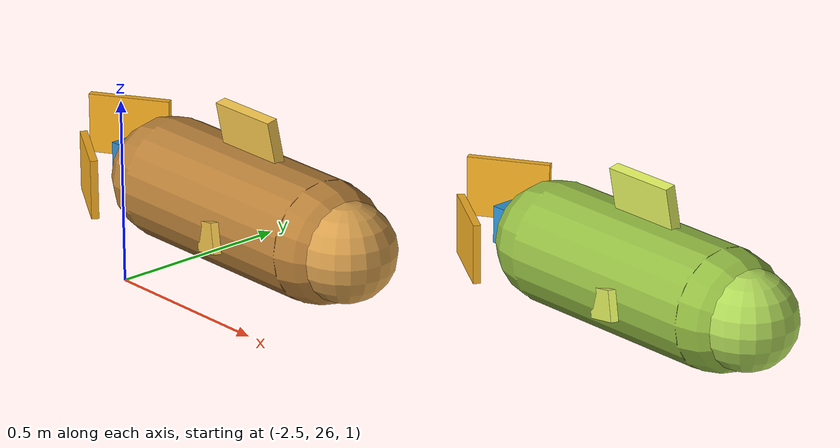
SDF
<sdf version="1.9">
 <world name="ocean_world">
  <model name="fish9">
   <static>false</static>
   <pose>-2.0 26.0 1.35 0 0 0</pose>
   <link name="body9">
    <gravity>false</gravity>
    <inertial><mass>5</mass></inertial>
    <collision name="body_collision">
     <pose>0 0 0 0 1.5708 0</pose>
     <geometry><capsule><radius>0.16</radius><length>0.58</length></capsule></geometry>
    </collision>
    <visual name="body_visual">
     <pose>0 0 0 0 1.5708 0</pose>
     <geometry><capsule><radius>0.16</radius><length>0.58</length></capsule></geometry>
     <material><ambient>0.72 0.50 0.22 1</ambient><diffuse>0.72 0.50 0.22 1</diffuse></material>
    </visual>
    <visual name="head_visual">
     <pose>0.38 0 0 0 0 0</pose>
     <geometry><sphere><radius>0.13</radius></sphere></geometry>
     <material><ambient>0.84 0.62 0.30 1</ambient><diffuse>0.84 0.62 0.30 1</diffuse></material>
    </visual>
    <visual name="eye_left">
     <pose>0.44 0.06 0.04 0 0 0</pose>
     <geometry><sphere><radius>0.02</radius></sphere></geometry>
     <material><ambient>0 0 0 1</ambient><diffuse>0 0 0 1</diffuse></material>
    </visual>
    <visual name="eye_right">
     <pose>0.44 -0.06 0.04 0 0 0</pose>
     <geometry><sphere><radius>0.02</radius></sphere></geometry>
     <material><ambient>0 0 0 1</ambient><diffuse>0 0 0 1</diffuse></material>
    </visual>
    <visual name="dorsal_fin">
     <pose>0.02 0 0.20 0.2 0 0</pose>
     <geometry><box><size>0.20 0.03 0.15</size></box></geometry>
     <material><ambient>0.96 0.78 0.30 1</ambient><diffuse>0.96 0.78 0.30 1</diffuse></material>
    </visual>
    <visual name="left_fin">
     <pose>0.04 0.16 -0.02 0 0.3 0.4</pose>
     <geometry><box><size>0.14 0.02 0.08</size></box></geometry>
     <material><ambient>0.96 0.78 0.30 1</ambient><diffuse>0.96 0.78 0.30 1</diffuse></material>
    </visual>
    <visual name="right_fin">
     <pose>0.04 -0.16 -0.02 0 -0.3 -0.4</pose>
     <geometry><box><size>0.14 0.02 0.08</size></box></geometry>
     <material><ambient>0.96 0.78 0.30 1</ambient><diffuse>0.96 0.78 0.30 1</diffuse></material>
    </visual>
   </link>
   <link name="tail9">
    <gravity>false</gravity>
    <inertial><mass>1</mass></inertial>
    <pose>-0.43 0 0 0 0 0</pose>
    <collision name="tail_collision"><geometry><box><size>0.10 0.08 0.12</size></box></geometry></collision>
    <visual name="tail_stem">
     <geometry><box><size>0.12 0.08 0.10</size></box></geometry>
     <material><ambient>0.18 0.53 0.78 1</ambient><diffuse>0.18 0.53 0.78 1</diffuse></material>
    </visual>
    <visual name="tail_top">
     <pose>-0.12 0.07 0.05 0 0 0.55</pose>
     <geometry><box><size>0.22 0.02 0.16</size></box></geometry>
     <material><ambient>0.95 0.67 0.13 1</ambient><diffuse>0.95 0.67 0.13 1</diffuse></material>
    </visual>
    <visual name="tail_bottom">
     <pose>-0.12 -0.07 -0.05 0 0 -0.55</pose>
     <geometry><box><size>0.22 0.02 0.16</size></box></geometry>
     <material><ambient>0.95 0.67 0.13 1</ambient><diffuse>0.95 0.67 0.13 1</diffuse></material>
    </visual>
   </link>
   <joint name="tail_joint9" type="revolute">
    <parent>body9</parent>
    <child>tail9</child>
    <axis>
     <xyz>0 0 1</xyz>
     <limit><lower>-0.8</lower><upper>0.8</upper><effort>5</effort><velocity>5</velocity></limit>
    </axis>
   </joint>
   <plugin filename="/home/kousik/fish_ai_plugin/build/libFishAI.so" name="FishAI"/>
  </model>
  <model name="fish10">
   <static>false</static>
   <pose>-1.2 26.6 1.25 0 0 0</pose>
   <link name="body10">
    <gravity>false</gravity>
    <inertial><mass>5</mass></inertial>
    <collision name="body_collision">
     <pose>0 0 0 0 1.5708 0</pose>
     <geometry><capsule><radius>0.16</radius><length>0.58</length></capsule></geometry>
    </collision>
    <visual name="body_visual">
     <pose>0 0 0 0 1.5708 0</pose>
     <geometry><capsule><radius>0.16</radius><length>0.58</length></capsule></geometry>
     <material><ambient>0.58 0.74 0.26 1</ambient><diffuse>0.58 0.74 0.26 1</diffuse></material>
    </visual>
    <visual name="head_visual">
     <pose>0.38 0 0 0 0 0</pose>
     <geometry><sphere><radius>0.13</radius></sphere></geometry>
     <material><ambient>0.68 0.84 0.34 1</ambient><diffuse>0.68 0.84 0.34 1</diffuse></material>
    </visual>
    <visual name="eye_left">
     <pose>0.44 0.06 0.04 0 0 0</pose>
     <geometry><sphere><radius>0.02</radius></sphere></geometry>
     <material><ambient>0 0 0 1</ambient><diffuse>0 0 0 1</diffuse></material>
    </visual>
    <visual name="eye_right">
     <pose>0.44 -0.06 0.04 0 0 0</pose>
     <geometry><sphere><radius>0.02</radius></sphere></geometry>
     <material><ambient>0 0 0 1</ambient><diffuse>0 0 0 1</diffuse></material>
    </visual>
    <visual name="dorsal_fin">
     <pose>0.02 0 0.20 0.2 0 0</pose>
     <geometry><box><size>0.20 0.03 0.15</size></box></geometry>
     <material><ambient>0.90 0.96 0.38 1</ambient><diffuse>0.90 0.96 0.38 1</diffuse></material>
    </visual>
    <visual name="left_fin">
     <pose>0.04 0.16 -0.02 0 0.3 0.4</pose>
     <geometry><box><size>0.14 0.02 0.08</size></box></geometry>
     <material><ambient>0.90 0.96 0.38 1</ambient><diffuse>0.90 0.96 0.38 1</diffuse></material>
    </visual>
    <visual name="right_fin">
     <pose>0.04 -0.16 -0.02 0 -0.3 -0.4</pose>
     <geometry><box><size>0.14 0.02 0.08</size></box></geometry>
     <material><ambient>0.90 0.96 0.38 1</ambient><diffuse>0.90 0.96 0.38 1</diffuse></material>
    </visual>
   </link>
   <link name="tail10">
    <gravity>false</gravity>
    <inertial><mass>1</mass></inertial>
    <pose>-0.43 0 0 0 0 0</pose>
    <collision name="tail_collision"><geometry><box><size>0.10 0.08 0.12</size></box></geometry></collision>
    <visual name="tail_stem">
     <geometry><box><size>0.12 0.08 0.10</size></box></geometry>
     <material><ambient>0.18 0.58 0.83 1</ambient><diffuse>0.18 0.58 0.83 1</diffuse></material>
    </visual>
    <visual name="tail_top">
     <pose>-0.12 0.07 0.05 0 0 0.55</pose>
     <geometry><box><size>0.22 0.02 0.16</size></box></geometry>
     <material><ambient>0.96 0.69 0.14 1</ambient><diffuse>0.96 0.69 0.14 1</diffuse></material>
    </visual>
    <visual name="tail_bottom">
     <pose>-0.12 -0.07 -0.05 0 0 -0.55</pose>
     <geometry><box><size>0.22 0.02 0.16</size></box></geometry>
     <material><ambient>0.96 0.69 0.14 1</ambient><diffuse>0.96 0.69 0.14 1</diffuse></material>
    </visual>
   </link>
   <joint name="tail_joint10" type="revolute">
    <parent>body10</parent>
    <child>tail10</child>
    <axis>
     <xyz>0 0 1</xyz>
     <limit><lower>-0.8</lower><upper>0.8</upper><effort>5</effort><velocity>5</velocity></limit>
    </axis>
   </joint>
   <plugin filename="/home/kousik/fish_ai_plugin/build/libFishAI.so" name="FishAI"/>
  </model>
 </world>
</sdf>
